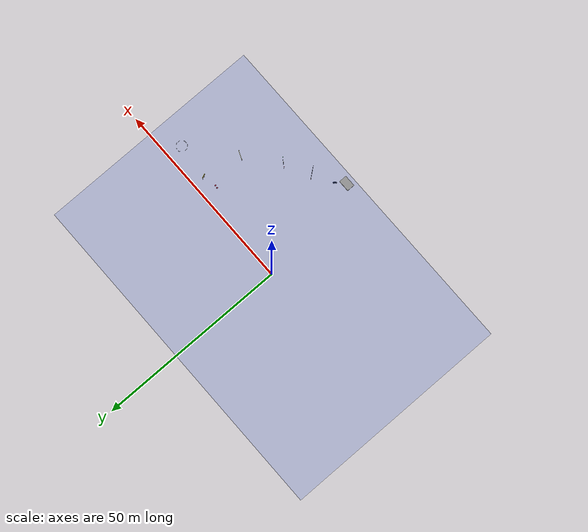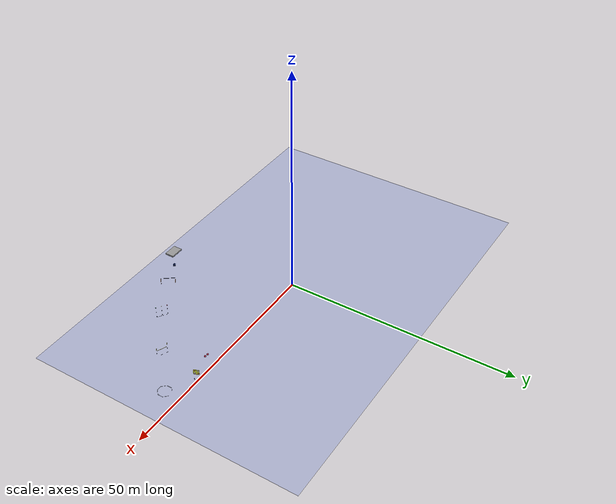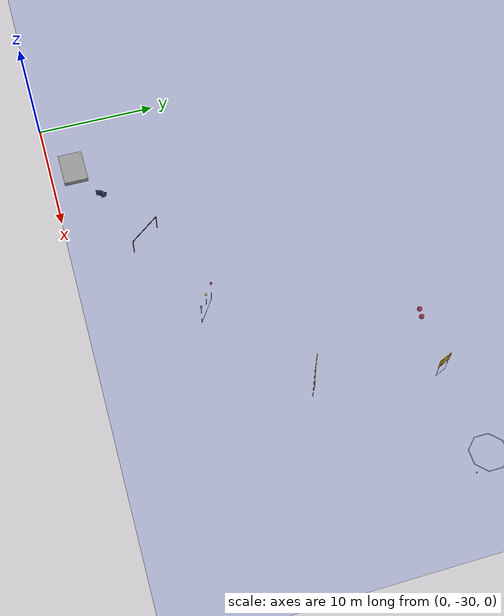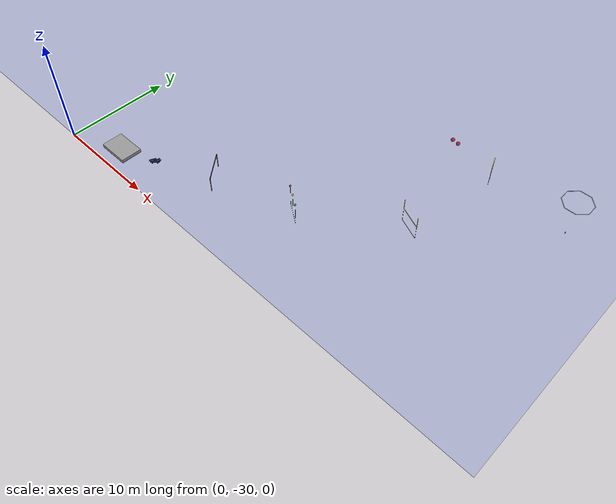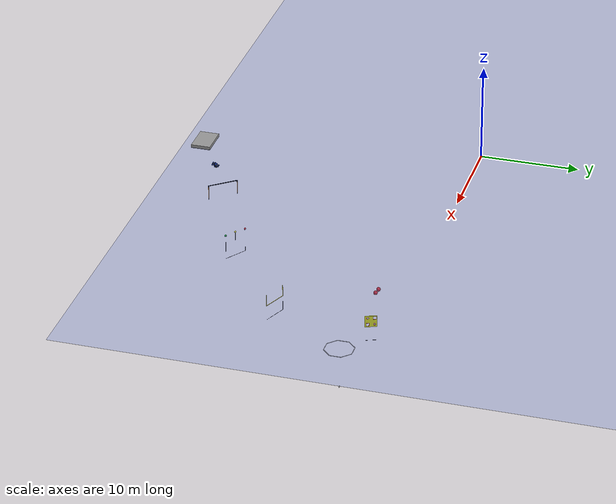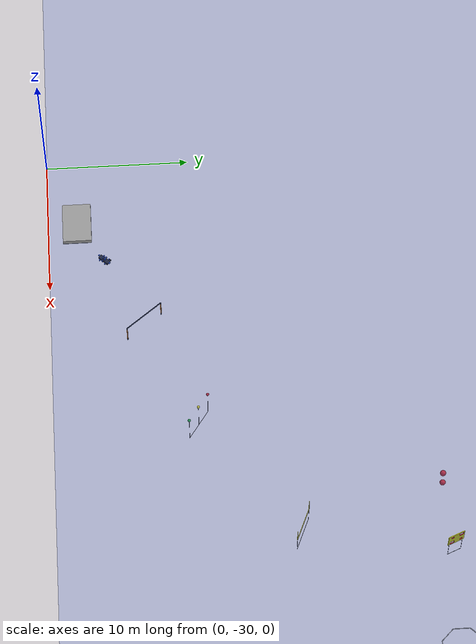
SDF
<sdf version="1.5">
 <world name="default">
  <scene>
   <ambient>0.25 0.3 1 1</ambient>
   <grid>0</grid>
   <background>0.25 0.3 1 1</background>
   <shadows>1</shadows>
  </scene>
  <light type="directional" name="sun0">
   <pose>8 -21 10 0 0.8 -2.8</pose>
   <diffuse>0.8 0.8 0.8 1</diffuse>
   <specular>0.2 0.2 0.2 1</specular>
   <attenuation>
    <range>1000</range>
    <constant>0.9</constant>
    <linear>0.01</linear>
    <quadratic>0.001</quadratic>
   </attenuation>
   <direction>-0.5 0.1 -0.9</direction>
  </light>
  <light type="directional" name="sun1">
   <pose>8 -20 10 0 0.8 0</pose>
   <diffuse>0.8 0.8 0.8 1</diffuse>
   <specular>0.2 0.2 0.2 1</specular>
   <attenuation>
    <range>1000</range>
    <constant>0.9</constant>
    <linear>0.01</linear>
    <quadratic>0.001</quadratic>
   </attenuation>
   <direction>-0.5 0.1 -0.9</direction>
  </light>
  <light type="directional" name="sun2">
   <pose>8 -19 10 0 0 0</pose>
   <diffuse>0.8 0.8 0.8 1</diffuse>
   <specular>0.2 0.2 0.2 1</specular>
   <attenuation>
    <range>1000</range>
    <constant>0.9</constant>
    <linear>0.01</linear>
    <quadratic>0.001</quadratic>
   </attenuation>
   <direction>-0.5 0.1 -0.9</direction>
  </light>
  <light type="directional" name="sun3">
   <pose>8 -19 10 1.75 0 0</pose>
   <diffuse>0.8 0.8 0.8 1</diffuse>
   <specular>0.2 0.2 0.2 1</specular>
   <attenuation>
    <range>1000</range>
    <constant>0.9</constant>
    <linear>0.01</linear>
    <quadratic>0.001</quadratic>
   </attenuation>
   <direction>-0.5 0.1 -0.9</direction>
  </light>
  <light type="directional" name="sun4">
   <pose>8 -19 10 1.75 0 2.9</pose>
   <diffuse>0.8 0.8 0.8 1</diffuse>
   <specular>0.2 0.2 0.2 1</specular>
   <attenuation>
    <range>1000</range>
    <constant>0.9</constant>
    <linear>0.01</linear>
    <quadratic>0.001</quadratic>
   </attenuation>
   <direction>-0.5 0.1 -0.9</direction>
  </light>
  <model name="ceiling_plane">
   <static>true</static>
   <link name="link">
    <visual name="visual">
     <cast_shadows>false</cast_shadows>
     <geometry><box><size>90 60 .001</size></box></geometry>
     <material>
      <script><uri>file://media/materials/scripts/gazebo.material</uri><name>Gazebo/BlueTransparent</name></script>
     </material>
     <transparency>0.8</transparency>
    </visual>
   </link>
  </model>
  <model name="dock_side_a">
   <static>true</static>
   <pose>4.8 -28.0 .13 0 0 0</pose>
   <link name="link">
    <collision name="collision"><geometry><box><size>3 2 0.35</size></box></geometry></collision>
    <visual name="visual">
     <geometry><box><size>3 2 0.35</size></box></geometry>
     <material>
      <script><uri>file://media/materials/scripts/gazebo.material</uri><name>Gazebo/Grey</name></script>
     </material>
    </visual>
   </link>
  </model>
  <model name="pinger_a">
   <static>true</static>
   <pose>37.88 -4.1 -4.9 0 0 0</pose>
   <link name="link">
    <visual name="visual">
     <geometry><cylinder><radius>0.03</radius><length>0.15</length></cylinder></geometry>
     <material>
      <script><uri>file://media/materials/scripts/gazebo.material</uri><name>Gazebo/FlatBlack</name></script>
     </material>
    </visual>
   </link>
  </model>
  <include><name>gate_side_a</name><pose>12.4 -23.6 -0.1 0 0 -0.9</pose><uri>model://gate</uri></include>
  <include><name>buoys_side_a</name><pose>19.0 -20.2 -4.1 0 0 -0.6</pose><uri>model://buoys</uri></include>
  <include>
   <name>channel_side_a</name>
   <pose>27.3 -13.6 -2.25 0 0 -0.4</pose>
   <uri>model://navigation_channel</uri>
  </include>
  <include><name>octagon_side_a</name><pose>37.88 -4.1 -0.75 0 0 0</pose><uri>model://octagon</uri></include>
  <include><name>marker_bin1_side_a</name><pose>25.93 -4.0 -4.54 0 0 0</pose><uri>model://bins</uri></include>
  <include><name>marker_bin2_side_a</name><pose>26.62 -4.1 -4.54 0 0 0</pose><uri>model://bins</uri></include>
  <include>
   <name>torpedo_target_side_a</name>
   <pose>29.2 -3.5 -2.87 0 0 -1.18</pose>
   <uri>model://torpedo_target</uri>
  </include>
  <include><name>robosub</name><pose>7.0 -26.2 -1.2 0 0 0.8</pose><uri>model://cobalt</uri></include>
 </world>
</sdf>

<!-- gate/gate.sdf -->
<sdf version='1.5'>

  <model name='gate'>
    <pose>0 0 0 0 0 0</pose>
    <self_collide> 0 </self_collide>
    <static> 1</static>

    <link name='gate_top'>
      <pose>0 0 0 0 1.5707 0</pose>
      <visual name='gate_top_vis'>
        <geometry>
          <cylinder>
            <radius>0.0381</radius>
            <length>3.05</length>
          </cylinder>
        </geometry>
        <material>
          <script>
            <uri>file://media/materials/scripts/gazebo.material</uri>
            <name>Gazebo/FlatBlack</name>
          </script>
        </material>
      </visual>
      <collision name='gate_top_collide'>
        <pose>0 0 0 0 1.5707 0</pose>
        <geometry>
          <cylinder>
            <radius>0.0381</radius>
            <length>3.05</length>
          </cylinder>
        </geometry>
      </collision>
    </link>

    <link name='gate_right'>
      <pose>1.525 0 -0.762 0 0 0</pose>
      <visual name='gate_right_vis'>
        <geometry>
          <cylinder>
            <radius>0.0381</radius>
            <length>1.21</length>
          </cylinder>
        </geometry>
        <material>
          <script>
            <uri>file://media/materials/scripts/gazebo.material</uri>
            <name>Gazebo/Orange</name>
          </script>
          <diffuse>0.6 0.3088 0.0468 1</diffuse>
        </material>
      </visual>
      <visual name='gate_right_top'>
        <pose>0 0 0.6858 0 0 0</pose>
        <geometry>
          <cylinder>
            <radius>0.0381</radius>
            <length>0.16</length>
          </cylinder>
        </geometry>
        <material>
          <script>
            <uri>file://media/materials/scripts/gazebo.material</uri>
            <name>Gazebo/FlatBlack</name>
          </script>
        </material>
      </visual>
      <visual name='gate_right_bottom'>
        <pose>0 0 -0.6858 0 0 0</pose>
        <geometry>
          <cylinder>
            <radius>0.0381</radius>
            <length>0.16</length>
          </cylinder>
        </geometry>
        <material>
          <script>
              <uri>file://media/materials/scripts/gazebo.material</uri>
              <name>Gazebo/FlatBlack</name>
          </script>
        </material>
      </visual>
      <collision name='gate_right_collide'>
        <pose>1.525 0 -0.762 0 0 0</pose>
        <geometry>
          <cylinder>
            <radius>0.0381</radius>
            <length>1.52</length>
          </cylinder>
        </geometry>
      </collision>
    </link>

    <link name='gate_left'>
      <pose>-1.525 0 -0.762 0 0 0</pose>
      <visual name='gate_left_vis'>
        <geometry>
          <cylinder>
            <radius>0.0381</radius>
            <length>1.21</length>
          </cylinder>
        </geometry>
        <material>
          <script>
            <uri>file://media/materials/scripts/gazebo.material</uri>
            <name>Gazebo/Orange</name>
          </script>
          <diffuse>0.6 0.3088 0.0468 1</diffuse>
        </material>
      </visual>
      <visual name='gate_left_top'>
        <pose>0 0 0.6858 0 0 0</pose>
        <geometry>
          <cylinder>
            <radius>0.0381</radius>
            <length>0.16</length>
          </cylinder>
        </geometry>
        <material>
          <script>
            <uri>file://media/materials/scripts/gazebo.material</uri>
            <name>Gazebo/FlatBlack</name>
          </script>
        </material>
      </visual>
      <visual name='gate_left_bottom'>
        <pose>0 0 -0.6858 0 0 0</pose>
        <geometry>
          <cylinder>
            <radius>0.0381</radius>
            <length>0.16</length>
          </cylinder>
        </geometry>
        <material>
          <script>
              <uri>file://media/materials/scripts/gazebo.material</uri>
              <name>Gazebo/FlatBlack</name>
          </script>
        </material>
      </visual>
      <collision name='gate_left_collide'>
        <pose>-1.525 0 -0.762 0 0 0</pose>
        <geometry>
          <cylinder>
            <radius>0.0381</radius>
            <length>1.52</length>
          </cylinder>
        </geometry>
      </collision>
    </link>

  </model>
</sdf>

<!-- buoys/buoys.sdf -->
<sdf version='1.5'>

  <model name='buoys'>
    <pose>0 0 0 0 0 0</pose>
    <self_collide> 0 </self_collide>
    <static> 1</static>

    <link name='red_buoy'>
      <pose>-1.2 0 2.5 0 0 0</pose>
      <visual name='red_vis'>
        <geometry>
          <sphere><radius>0.1</radius></sphere>
        </geometry>
        <material>
          <script>
            <uri>file://media/materials/scripts/gazebo.material</uri>
            <name>Gazebo/Red</name>
          </script>
          <diffuse>0.6 0 0 1</diffuse>
        </material>
      </visual>
      <collision name='red_collide'>
        <geometry>
          <sphere><radius>0.1</radius></sphere>
        </geometry>
      </collision>
    </link>
    <link name='green_buoy'>
      <pose>1.2 0 2.6 0 0 0</pose>
      <visual name='green_vis'>
        <geometry>
          <sphere><radius>0.1</radius></sphere>
        </geometry>
        <material>
          <script>
            <uri>file://media/materials/scripts/gazebo.material</uri>
            <name>Gazebo/Green</name>
          </script>
          <diffuse>0 0.6 0 1</diffuse>
        </material>
      </visual>
      <collision name='green_collide'>
        <geometry>
          <sphere><radius>0.1</radius></sphere>
        </geometry>
      </collision>
    </link>
    <link name='yellow_buoy'>
        <pose>0 0 2.6 0 0 0</pose>
      <visual name='yellow_vis'>
        <geometry>
          <sphere><radius>0.1</radius></sphere>
        </geometry>
        <material>
          <script>
            <uri>file://media/materials/scripts/gazebo.material</uri>
            <name>Gazebo/Yellow</name>
          </script>
          <diffuse>0.6 0.6 0 1</diffuse>
        </material>
      </visual>
      <collision name='yellow_collide'>
        <geometry>
          <sphere><radius>0.1</radius></sphere>
        </geometry>
      </collision>
    </link>
    <link name='bottom_rod'>
        <pose>0 0 0 0 1.5707 0</pose>
        <visual name='bottom_rod_vis'>
          <geometry>
            <cylinder>
              <radius>0.01</radius>
              <length>2.4</length>
            </cylinder>
          </geometry>
        <material>
          <script>
            <uri>file://media/materials/scripts/gazebo.material</uri>
            <name>Gazebo/FlatBlack</name>
          </script>
          <diffuse>0.3 0.3 0.3 1</diffuse>
        </material>
        </visual>
    </link>
    <link name='red_rod'>
        <pose>-1.2 0 1.2 0 0 0</pose>
        <visual name='red_rod_vis'>
          <geometry>
            <cylinder>
              <radius>0.01</radius>
              <length>2.4</length>
            </cylinder>
          </geometry>
        <material>
          <script>
            <uri>file://media/materials/scripts/gazebo.material</uri>
            <name>Gazebo/FlatBlack</name>
          </script>
          <diffuse>0.3 0.3 0.3 1</diffuse>
        </material>
        </visual>
    </link>
    <link name='green_rod'>
        <pose>0 0 1.26 0 0 0</pose>
        <visual name='green_rod_vis'>
          <geometry>
            <cylinder>
              <radius>0.01</radius>
              <length>2.5</length>
            </cylinder>
          </geometry>
        <material>
          <script>
            <uri>file://media/materials/scripts/gazebo.material</uri>
            <name>Gazebo/FlatBlack</name>
          </script>
          <diffuse>0.3 0.3 0.3 1</diffuse>
        </material>
        </visual>
    </link>
    <link name='yellow_rod'>
        <pose>1.2 0 1.26 0 0 0</pose>
        <visual name='yellow_rod_vis'>
          <geometry>
            <cylinder>
              <radius>0.01</radius>
              <length>2.5</length>
            </cylinder>
          </geometry>
        <material>
          <script>
            <uri>file://media/materials/scripts/gazebo.material</uri>
            <name>Gazebo/FlatBlack</name>
          </script>
          <diffuse>0.3 0.3 0.3 1</diffuse>
        </material>
        </visual>
    </link>

  </model>
</sdf>

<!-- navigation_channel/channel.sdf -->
<sdf version='1.5'>

  <model name='channel'>
    <pose>0 0 0 0 0 0</pose>
    <self_collide> 0 </self_collide>
    <static> 1</static>

    <link name='bottom'>
      <pose>0 0 -1.2 0 1.5707 0</pose>
      <visual name='bottom_vis'>
        <geometry>
          <cylinder>
            <radius>0.0254</radius>
            <length>2.4</length>
          </cylinder>
        </geometry>
        <material>
          <script>
            <uri>file://media/materials/scripts/gazebo.material</uri>
            <name>Gazebo/Yellow</name>
          </script>
          <diffuse>0.6 0.6 0 1</diffuse>
        </material>
      </visual>
      <collision name='bottom_collide'>
        <pose>0 0 -1.2 0 1.5707 0</pose>
        <geometry>
          <cylinder>
            <radius>0.0254</radius>
            <length>2.4</length>
          </cylinder>
        </geometry>
      </collision>
    </link>

    <link name='left'>
      <pose>-1.2 0 -0.6 0 0 0</pose>
      <visual name='left_vis'>
        <geometry>
          <cylinder>
            <radius>0.0254</radius>
            <length>1.2</length>
          </cylinder>
        </geometry>
        <material>
          <script>
            <uri>file://media/materials/scripts/gazebo.material</uri>
            <name>Gazebo/Yellow</name>
          </script>
          <diffuse>0.6 0.6 0 1</diffuse>
        </material>
      </visual>
      <collision name='left_collide'>
        <pose>-1.2 0 0.6 0 0 0</pose>
        <geometry>
          <cylinder>
            <radius>0.0254</radius>
            <length>1.2</length>
          </cylinder>
        </geometry>
      </collision>
    </link>

    <link name='right'>
      <pose>1.2 0 -0.6 0 0 0</pose>
      <visual name='right_vis'>
        <geometry>
          <cylinder>
            <radius>0.0254</radius>
            <length>1.2</length>
          </cylinder>
        </geometry>
        <material>
          <script>
            <uri>file://media/materials/scripts/gazebo.material</uri>
            <name>Gazebo/Yellow</name>
          </script>
          <diffuse>0.6 0.6 0 1</diffuse>
        </material>
      </visual>
      <collision name='right_collide'>
        <pose>1.2 0 0.6 0 0 0</pose>
        <geometry>
          <cylinder>
            <radius>0.0254</radius>
            <length>1.2</length>
          </cylinder>
        </geometry>
      </collision>
    </link>

    <link name='left_tether'>
      <pose>-1.2 0 -2.0 0 0 0</pose>
      <visual name='left_tether_vis'>
        <geometry>
          <cylinder>
            <radius>0.01</radius>
            <length>1.5</length>
          </cylinder>
        </geometry>
        <material>
          <script>
            <uri>file://media/materials/scripts/gazebo.material</uri>
            <name>Gazebo/FlatBlack</name>
          </script>
          <diffuse>0.3 0.3 0.3 1</diffuse>
        </material>
      </visual>
      <collision name='left_tether_collide'>
        <pose>-1.2 0 -2.0 0 0 0</pose>
        <geometry>
          <cylinder>
            <radius>0.01</radius>
            <length>1.5</length>
          </cylinder>
        </geometry>
      </collision>
    </link>

    <link name='right_tether'>
      <pose>1.2 0 -2.0 0 0 0</pose>
      <visual name='right_tether_vis'>
        <geometry>
          <cylinder>
            <radius>0.01</radius>
            <length>1.5</length>
          </cylinder>
        </geometry>
        <material>
          <script>
            <uri>file://media/materials/scripts/gazebo.material</uri>
            <name>Gazebo/FlatBlack</name>
          </script>
          <diffuse>0.3 0.3 0.3 1</diffuse>
        </material>
      </visual>
      <collision name='right_tether_collide'>
        <pose>1.2 0 -2.0 0 0 0</pose>
        <geometry>
          <cylinder>
            <radius>0.01</radius>
            <length>1.5</length>
          </cylinder>
        </geometry>
      </collision>
    </link>

    <link name='floor'>
      <pose>0 0 -2.75 0 1.5707 0</pose>
      <visual name='floor_vis'>
        <geometry>
          <cylinder>
            <radius>0.01</radius>
            <length>2.4</length>
          </cylinder>
        </geometry>
        <material>
          <script>
            <uri>file://media/materials/scripts/gazebo.material</uri>
            <name>Gazebo/FlatBlack</name>
          </script>
          <diffuse>0.3 0.3 0.3 1</diffuse>
        </material>
      </visual>
      <collision name='floor_collide'>
        <pose>0 0 -2.75 0 1.5707 0</pose>
        <geometry>
          <cylinder>
            <radius>0.01</radius>
            <length>2.4</length>
          </cylinder>
        </geometry>
      </collision>
    </link>
  </model>
</sdf>

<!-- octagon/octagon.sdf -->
<sdf version='1.5'>

  <model name='octagon'>
    <pose>0 0 0 0 0 0</pose>
    <self_collide> 0 </self_collide>
    <static> 1</static>

    <link name='rod1'>
        <pose>0 1.35 0 0 1.5707 0</pose>
        <visual name='rod1_vis'>
          <geometry>
            <cylinder>
              <radius>0.0254</radius>
              <length>1.118</length>
            </cylinder>
          </geometry>
        <material>
          <script>
            <uri>file://media/materials/scripts/gazebo.material</uri>
            <name>Gazebo/White</name>
          </script>
          <diffuse>0.3 0.3 0.3 1</diffuse>
        </material>
        </visual>
        <collision name='rod1_collide'>
          <pose>1.35 0 0 0 1.5707 0</pose>
          <geometry>
            <cylinder>
              <radius>0.0254</radius>
              <length>1.118</length>
            </cylinder>
          </geometry>
        </collision>
    </link>

    <link name='rod2'>
        <pose>0 -1.35 0 0 1.5707 0</pose>
        <visual name='rod2_vis'>
          <geometry>
            <cylinder>
              <radius>0.0254</radius>
              <length>1.118</length>
            </cylinder>
          </geometry>
        <material>
          <script>
            <uri>file://media/materials/scripts/gazebo.material</uri>
            <name>Gazebo/White</name>
          </script>
          <diffuse>0.3 0.3 0.3 1</diffuse>
        </material>
        </visual>
        <collision name='rod2_collide'>
          <pose>-1.35 0 0 0 1.5707 0</pose>
          <geometry>
            <cylinder>
              <radius>0.0254</radius>
              <length>1.118</length>
            </cylinder>
          </geometry>
        </collision>
    </link>

    <link name='rod3'>
        <pose>1.35 0 0 0 1.5707 1.5707</pose>
        <visual name='rod3_vis'>
          <geometry>
            <cylinder>
              <radius>0.0254</radius>
              <length>1.118</length>
            </cylinder>
          </geometry>
        <material>
          <script>
            <uri>file://media/materials/scripts/gazebo.material</uri>
            <name>Gazebo/White</name>
          </script>
          <diffuse>0.3 0.3 0.3 1</diffuse>
        </material>
        </visual>
        <collision name='rod3_collide'>
          <pose>0 1.35 0 0 1.5707 1.5707</pose>
          <geometry>
            <cylinder>
              <radius>0.0254</radius>
              <length>1.118</length>
            </cylinder>
          </geometry>
        </collision>
    </link>

    <link name='rod4'>
        <pose>-1.35 0 0 0 1.5707 1.5707</pose>
        <visual name='rod4_vis'>
          <geometry>
            <cylinder>
              <radius>0.0254</radius>
              <length>1.118</length>
            </cylinder>
          </geometry>
        <material>
          <script>
            <uri>file://media/materials/scripts/gazebo.material</uri>
            <name>Gazebo/White</name>
          </script>
          <diffuse>0.3 0.3 0.3 1</diffuse>
        </material>
        </visual>
        <collision name='rod4_collide'>
          <pose>0 -1.35 0 0 1.5707 1.5707</pose>
          <geometry>
            <cylinder>
              <radius>0.0254</radius>
              <length>1.118</length>
            </cylinder>
          </geometry>
        </collision>
    </link>

    <link name='rod5'>
        <pose>0.95 0.95 0 0 1.5707 2.356</pose>
        <visual name='rod5_vis'>
          <geometry>
            <cylinder>
              <radius>0.0254</radius>
              <length>1.118</length>
            </cylinder>
          </geometry>
        <material>
          <script>
            <uri>file://media/materials/scripts/gazebo.material</uri>
            <name>Gazebo/White</name>
          </script>
          <diffuse>0.3 0.3 0.3 1</diffuse>
        </material>
        </visual>
        <collision name='rod5_collide'>
          <pose>0.95 0.95 0 0 1.5707 2.356</pose>
          <geometry>
            <cylinder>
              <radius>0.0254</radius>
              <length>1.118</length>
            </cylinder>
          </geometry>
        </collision>
    </link>

    <link name='rod6'>
        <pose>-0.95 0.95 0 0 1.5707 -2.356</pose>
        <visual name='rod6_vis'>
          <geometry>
            <cylinder>
              <radius>0.0254</radius>
              <length>1.118</length>
            </cylinder>
          </geometry>
        <material>
          <script>
            <uri>file://media/materials/scripts/gazebo.material</uri>
            <name>Gazebo/White</name>
          </script>
          <diffuse>0.3 0.3 0.3 1</diffuse>
        </material>
        </visual>
        <collision name='rod6_collide'>
          <pose>-0.95 0.95 0 0 1.5707 -2.356</pose>
          <geometry>
            <cylinder>
              <radius>0.0254</radius>
              <length>1.118</length>
            </cylinder>
          </geometry>
        </collision>
    </link>

    <link name='rod7'>
        <pose>-0.95 -0.95 0 0 1.5707 2.356</pose>
        <visual name='rod7_vis'>
          <geometry>
            <cylinder>
              <radius>0.0254</radius>
              <length>1.118</length>
            </cylinder>
          </geometry>
        <material>
          <script>
            <uri>file://media/materials/scripts/gazebo.material</uri>
            <name>Gazebo/White</name>
          </script>
          <diffuse>0.3 0.3 0.3 1</diffuse>
        </material>
        </visual>
        <collision name='rod7_collide'>
          <pose>-0.95 -0.95 0 0 1.5707 2.356</pose>
          <geometry>
            <cylinder>
              <radius>0.0254</radius>
              <length>1.118</length>
            </cylinder>
          </geometry>
        </collision>
    </link>

    <link name='rod8'>
        <pose>0.95 -0.95 0 0 1.5707 -2.356</pose>
        <visual name='rod8_vis'>
          <geometry>
            <cylinder>
              <radius>0.0254</radius>
              <length>1.118</length>
            </cylinder>
          </geometry>
        <material>
          <script>
            <uri>file://media/materials/scripts/gazebo.material</uri>
            <name>Gazebo/White</name>
          </script>
          <diffuse>0.3 0.3 0.3 1</diffuse>
        </material>
        </visual>
        <collision name='rod8_collide'>
          <pose>0.95 -0.95 0 0 1.5707 -2.356</pose>
          <geometry>
            <cylinder>
              <radius>0.0254</radius>
              <length>1.118</length>
            </cylinder>
          </geometry>
        </collision>
    </link>
  </model>
</sdf>

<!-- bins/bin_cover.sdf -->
<sdf version='1.5'>

  <model name='bin_cover'>
    <pose>0 0 0 0 0 0</pose>
    <self_collide> 0 </self_collide>
    <static> 1</static>

    <link name='red_buoy'>
      <pose>-1.2 0 2.5 0 0 0</pose>
      <visual name='red_vis'>
        <geometry>
          <sphere><radius>0.2</radius></sphere>
        </geometry>
        <material>
          <script>
            <uri>file://media/materials/scripts/gazebo.material</uri>
            <name>Gazebo/Red</name>
          </script>
          <diffuse>0.6 0 0 1</diffuse>
        </material>
      </visual>
      <collision name='red_collide'>
        <pose>-1.2 0 2.5 0 0 0</pose>
        <geometry>
          <sphere><radius>0.11</radius></sphere>
        </geometry>
      </collision>
    </link>

  </model>
</sdf>

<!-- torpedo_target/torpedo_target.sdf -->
<sdf version='1.5'>

  <model name='torpedo_target'>
    <pose>0 0 0 0 0 0</pose>
    <self_collide> 0 </self_collide>
    <static> 1</static>

    <link name='board'>
      <pose>0 0 0 0 0 0</pose>
      <visual name='main'>
        <geometry>
            <mesh><uri>file://torpedo_target/TorpedoTarget.dae</uri></mesh>
        </geometry>
      </visual>
      <collision name='main'>
        <pose>0 0 0 1.5707 0 0</pose>
        <geometry>
          <box><size>1.2 1.2 0.05</size></box>
        </geometry>
      </collision>
    </link>

    <link name='legs'>
      <visual name='leg1'>
        <pose>-0.5 0 -1.35 0 0 0 </pose>
        <geometry>
          <cylinder>
            <radius>0.01</radius>
            <length>1.5</length>
          </cylinder>
        </geometry>
        <material>
          <script>
            <uri>file://media/materials/scripts/gazebo.material</uri>
            <name>Gazebo/FlatBlack</name>
          </script>
          <diffuse>0.3 0.3 0.3 1</diffuse>
        </material>
      </visual>
      <visual name='leg2'>
        <pose>0.5 0 -1.35 0 0 0 </pose>
        <geometry>
          <cylinder>
            <radius>0.01</radius>
            <length>1.5</length>
          </cylinder>
        </geometry>
        <material>
          <script>
            <uri>file://media/materials/scripts/gazebo.material</uri>
            <name>Gazebo/FlatBlack</name>
          </script>
          <diffuse>0.3 0.3 0.3 1</diffuse>
        </material>
      </visual>
      <visual name='floor'>
        <pose>0 0 -2.1 0 1.5707 0</pose>
        <geometry>
          <cylinder>
            <radius>0.01</radius>
            <length>1</length>
          </cylinder>
        </geometry>
        <material>
          <script>
            <uri>file://media/materials/scripts/gazebo.material</uri>
            <name>Gazebo/FlatBlack</name>
          </script>
          <diffuse>0.3 0.3 0.3 1</diffuse>
        </material>
      </visual>
    </link>

  </model>
</sdf>

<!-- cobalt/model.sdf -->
<sdf version='1.5'>

  <model name='robosub_cobalt'>
    <pose>0 0 0.0 0 0 0</pose>
    <self_collide> 0 </self_collide>

    <joint name="hull_frame" type="fixed">
        <parent>frame</parent>
        <child>hull</child>
    </joint>

    <joint name='dive_front_left_frame' type="fixed">
        <parent>frame</parent>
        <child>dive_front_left</child>
    </joint>

    <joint name='dive_front_right_frame' type="fixed">
        <parent>frame</parent>
        <child>dive_front_right</child>
    </joint>

    <joint name='dive_back_left_frame' type="fixed">
        <parent>frame</parent>
        <child>dive_back_left</child>
    </joint>

    <joint name='dive_back_right_frame' type="fixed">
        <parent>frame</parent>
        <child>dive_back_right</child>
    </joint>

    <joint name='strafe_front_frame' type="fixed">
        <parent>frame</parent>
        <child>strafe_front</child>
    </joint>

    <joint name='strafe_back_frame' type="fixed">
        <parent>frame</parent>
        <child>strafe_back</child>
    </joint>

    <joint name='forward_left_frame' type="fixed">
        <parent>frame</parent>
        <child>forward_left</child>
    </joint>

    <joint name='forward_right_frame' type="fixed">
        <parent>frame</parent>
        <child>forward_right</child>
    </joint>

    <joint name='left_camera_frame' type="fixed">
        <parent>frame</parent>
        <child>left_camera</child>
    </joint>

    <joint name='right_camera_frame' type="fixed">
        <parent>frame</parent>
        <child>right_camera</child>
    </joint>

    <joint name='bottom_camera_frame' type="fixed">
        <parent>frame</parent>
        <child>bottom_camera</child>
    </joint>

    <joint name='hydrophone_h0_frame' type="fixed">
        <parent>frame</parent>
        <child>hydrophone_h0</child>
    </joint>

    <joint name='hydrophone_hx_frame' type="fixed">
        <parent>frame</parent>
        <child>hydrophone_hx</child>
    </joint>

    <joint name='hydrophone_hy_frame' type="fixed">
        <parent>frame</parent>
        <child>hydrophone_hy</child>
    </joint>

    <joint name='hydrophone_hz_frame' type="fixed">
        <parent>frame</parent>
        <child>hydrophone_hz</child>
    </joint>

    <link name='hull'>
      <pose>0 0 .082 1.57079632679 0 1.57079632679 </pose>
      <inertial>
        <mass>9</mass>
      </inertial>

      <visual name='bulkhead_visual'>
        <geometry>
              <cylinder>
                <radius>0.1</radius>
                <length>.13</length>
              </cylinder>
        </geometry>
        <material>
            <script>
              <uri>file://media/materials/scripts/gazebo.material</uri>
              <name>Gazebo/Black</name>
            </script>
          </material>
      </visual>

      <visual name='front_ring_visual'>
      <pose>0 0 .075 0 0 0</pose>
        <geometry>
              <cylinder>
                <radius>0.102</radius>
                <length>.05</length>
              </cylinder>
        </geometry>
        <material>
            <script>
              <uri>file://media/materials/scripts/gazebo.material</uri>
              <name>Gazebo/Blue</name>
            </script>
          </material>
      </visual>
      <visual name='rear_ring_visual'>
      <pose>0 0 -.075 0 0 0</pose>
        <geometry>
              <cylinder>
                <radius>0.102</radius>
                <length>.05</length>
              </cylinder>
        </geometry>
        <material>
            <script>
              <uri>file://media/materials/scripts/gazebo.material</uri>
              <name>Gazebo/Blue</name>
            </script>
          </material>
      </visual>
      <visual name='front_tube_visual'>
      <pose>0 0 .235 0 0 0</pose>
        <geometry>
              <cylinder>
                <radius>0.1</radius>
                <length>.32</length>
              </cylinder>
        </geometry>
        <material>
            <script>
              <uri>file://media/materials/scripts/gazebo.material</uri>
              <name>Gazebo/GreyTransparent</name>
            </script>
            <diffuse>0.6 0.6 0.6 0.6</diffuse>
          </material>
      </visual>

      <visual name='rear_tube_visual'>
      <pose>0 0 -.235 0 0 0</pose>
        <geometry>
              <cylinder>
                <radius>0.1</radius>
                <length>.32</length>
              </cylinder>
        </geometry>
        <material>
            <script>
              <uri>file://media/materials/scripts/gazebo.material</uri>
              <name>Gazebo/GreyTransparent</name>
            </script>
            <diffuse>0.6 0.6 0.6 0.6</diffuse>
          </material>
      </visual>
      <collision name='hull_collision'>
        <geometry>
              <cylinder>
                <radius>0.1</radius>
                <length>.77</length>
              </cylinder>
            </geometry>
      </collision>
      <velocity_decay>
          <linear>0.002</linear>
          <angular>0.002</angular>
      </velocity_decay>
    </link>

    <link name='hydrophone_h0'>
      <pose> 0 0 0 0 0 0 </pose>
      <inertial>
        <mass> 0.01 </mass>
      </inertial>
    </link>

    <link name='hydrophone_hx'>
      <pose> 3 0 0 0 0 0 </pose>
      <inertial>
        <mass> 0.01 </mass>
      </inertial>
    </link>

    <link name='hydrophone_hy'>
      <pose> 0 3 0 0 0 0 </pose>
      <inertial>
        <mass> 0.01 </mass>
      </inertial>
    </link>

    <link name='hydrophone_hz'>
      <pose> 0 0 3 0 0 0 </pose>
      <inertial>
        <mass> 0.01 </mass>
      </inertial>
    </link>

    <link name='frame'>
      <pose>0 0 -0.088 0 0 0</pose>
      <inertial>
        <mass>16.5</mass>
      </inertial>

      <visual name='frame_visual'>
        <geometry>
              <box>
                <size>.85 .3 .13</size>
              </box>
            </geometry>
          <material>
            <script>
              <uri>file://media/materials/scripts/gazebo.material</uri>
              <name>Gazebo/FlatBlack</name>
            </script>
          </material>
      </visual>

      <collision name='frame_collision'>
        <geometry>
              <box>
                <size>.85 .3 .13</size>
              </box>
            </geometry>
      </collision>
      <velocity_decay>
          <linear>0.002</linear>
          <angular>0.002</angular>
      </velocity_decay>
    </link>

    <link name='dive_front_left'>
      <pose>0.235 0.23 -0.1 0 3.14159 0</pose>
      <inertial>
        <mass>0.344</mass>
      </inertial>
      <visual name='dive_front_left_visual'>
        <geometry>
          <cylinder>
            <radius>0.0485</radius>
            <length>0.101</length>
          </cylinder>
        </geometry>
      <material>
        <script>
          <uri>file://media/materials/scripts/gazebo.material</uri>
          <name>Gazebo/Blue</name>
        </script>
      </material>
      </visual>
      <collision name='dive_front_left_collision'>
        <geometry>
          <cylinder>
            <radius>0.0485</radius>
            <length>0.101</length>
          </cylinder>
        </geometry>
      </collision>
    </link>

    <link name='dive_front_right'>
      <pose>0.235 -0.23 -0.1 0 3.14159 0</pose>
      <inertial>
        <mass>0.344</mass>
      </inertial>
      <visual name='dive_front_right_visual'>
        <geometry>
          <cylinder>
            <radius>0.0485</radius>
            <length>0.101</length>
          </cylinder>
        </geometry>
      <material>
        <script>
          <uri>file://media/materials/scripts/gazebo.material</uri>
          <name>Gazebo/Blue</name>
        </script>
      </material>
      </visual>
      <collision name='dive_front_right_collision'>
        <geometry>
          <cylinder>
            <radius>0.0485</radius>
            <length>0.101</length>
          </cylinder>
        </geometry>
      </collision>
    </link>

    <link name='dive_back_left'>
      <pose>-0.235 0.23 -0.1 0 3.14159 0</pose>
      <inertial>
        <mass>0.344</mass>
      </inertial>
      <visual name='dive_back_left_visual'>
        <geometry>
          <cylinder>
            <radius>0.0485</radius>
            <length>0.101</length>
          </cylinder>
        </geometry>
      <material>
        <script>
          <uri>file://media/materials/scripts/gazebo.material</uri>
          <name>Gazebo/Blue</name>
        </script>
      </material>
      </visual>
      <collision name='dive_back_left_collision'>
        <geometry>
          <cylinder>
            <radius>0.0485</radius>
            <length>0.101</length>
          </cylinder>
        </geometry>
      </collision>
    </link>

    <link name='dive_back_right'>
      <pose>-0.235 -0.23 -0.1 0 3.14159 0</pose>
      <inertial>
        <mass>0.344</mass>
      </inertial>
      <visual name='dive_back_right_visual'>
        <geometry>
          <cylinder>
            <radius>0.0485</radius>
            <length>0.101</length>
          </cylinder>
        </geometry>
      <material>
        <script>
          <uri>file://media/materials/scripts/gazebo.material</uri>
          <name>Gazebo/Blue</name>
        </script>
      </material>
      </visual>
      <collision name='dive_back_right_collision'>
        <geometry>
          <cylinder>
            <radius>0.0485</radius>
            <length>0.101</length>
          </cylinder>
        </geometry>
      </collision>
    </link>

    <link name='strafe_front'>
      <pose>0.49 0 -0.01 -1.57079632679 0 0</pose>
      <inertial>
        <mass>0.344</mass>
      </inertial>
      <visual name='strafe_front_visual'>
        <geometry>
          <cylinder>
            <radius>0.0485</radius>
            <length>0.101</length>
          </cylinder>
        </geometry>
      <material>
        <script>
          <uri>file://media/materials/scripts/gazebo.material</uri>
          <name>Gazebo/Blue</name>
        </script>
      </material>
      </visual>
      <collision name='strafe_front_collision'>
        <geometry>
          <cylinder>
            <radius>0.0485</radius>
            <length>0.101</length>
          </cylinder>
        </geometry>
      </collision>
    </link>

    <link name='strafe_back'>
      <pose>-0.49 0 -0.01 -1.57079632679 0 0</pose>
      <inertial>
        <mass>0.344</mass>
      </inertial>
      <visual name='strafe_back_visual'>
        <geometry>
          <cylinder>
            <radius>0.0485</radius>
            <length>0.101</length>
          </cylinder>
        </geometry>
      <material>
        <script>
          <uri>file://media/materials/scripts/gazebo.material</uri>
          <name>Gazebo/Blue</name>
        </script>
      </material>
      </visual>
      <collision name='strafe_back_collision'>
        <geometry>
          <cylinder>
            <radius>0.0485</radius>
            <length>0.101</length>
          </cylinder>
        </geometry>
      </collision>
    </link>

    <link name='forward_left'>
      <pose>0 0.2075 -0.01 0 -1.57079632679 0</pose>
      <inertial>
        <mass>0.344</mass>
      </inertial>
      <visual name='forward_left_visual'>
        <geometry>
          <cylinder>
            <radius>0.0485</radius>
            <length>0.101</length>
          </cylinder>
        </geometry>
      <material>
        <script>
          <uri>file://media/materials/scripts/gazebo.material</uri>
          <name>Gazebo/Blue</name>
        </script>
      </material>
      </visual>
      <collision name='forward_left_collision'>
        <geometry>
          <cylinder>
            <radius>0.0485</radius>
            <length>0.101</length>
          </cylinder>
        </geometry>
      </collision>
    </link>

    <link name='forward_right'>
      <pose>0 -0.2075 -0.01 0 -1.57079632679 0</pose>
      <inertial>
        <mass>0.344</mass>
      </inertial>
      <visual name='forward_right_visual'>
        <geometry>
          <cylinder>
            <radius>0.0485</radius>
            <length>0.101</length>
          </cylinder>
        </geometry>
      <material>
        <script>
          <uri>file://media/materials/scripts/gazebo.material</uri>
          <name>Gazebo/Blue</name>
        </script>
      </material>
      </visual>
      <collision name='forward_right_collision'>
        <geometry>
          <cylinder>
            <radius>0.0485</radius>
            <length>0.101</length>
          </cylinder>
        </geometry>
      </collision>
    </link>

    <link name='left_camera'>
      <pose>0.37 0.20 0.04 0 1.57079632679 0</pose>
      <inertial>
        <mass>0.73</mass>
      </inertial>
      <visual name='left_camera_visual'>
        <geometry>
          <cylinder>
            <radius>0.0405</radius>
            <length>0.15</length>
          </cylinder>
        </geometry>
      <material>
        <script>
          <uri>file://media/materials/scripts/gazebo.material</uri>
          <name>Gazebo/Black</name>
        </script>
      </material>
      </visual>
      <collision name='left_camera_collision'>
        <geometry>
          <cylinder>
            <radius>0.0405</radius>
            <length>0.15</length>
          </cylinder>
        </geometry>
      </collision>
      <sensor name="left" type="wideanglecamera">
          <pose>0 0 0.14 0 -1.570796 0</pose>
          <camera>
              <horizontal_fov>3.1415</horizontal_fov>
              <image>
                  <width>640</width>
                  <height>640</height>
              </image>
              <clip>
                  <near>0.001</near>
                  <far>100</far>
              </clip>
              <lens>
                  <type>custom</type>
                  <custom_function>
                      <c1>691.5</c1>
                      <c2>515.5</c2>
                      <f>341.43251966606937</f>
                      <fun>tan</fun>
                  </custom_function>
                  <scale_to_hfov>true</scale_to_hfov>
                  <cutoff_angle>1.57075</cutoff_angle>
                  <env_texture_size>512</env_texture_size>
              </lens>
              <distortion>
                <k1>-.16492342967649815</k1>
                <k2>0.016187172468110342</k2>
                <k3>-0.00038951913220274415</k3>
                <p1>0</p1>
                <p2>0</p2>
                <center>0 0</center>
              </distortion>
          </camera>
          <plugin name="left_camera_controller" filename="libgazebo_ros_camera.so">
              <cameraName>left</cameraName>
              <imageTopicName>/camera/left</imageTopicName>
          </plugin>
          <always_on>1</always_on>
          <update_rate>5</update_rate>
      </sensor>
    </link>

    <link name='right_camera'>
      <pose>0.37 -0.20 0.04 0 1.57079632679 0</pose>
      <inertial>
        <mass>0.73</mass>
      </inertial>
      <visual name='right_camera_visual'>
        <geometry>
          <cylinder>
            <radius>0.0405</radius>
            <length>0.15</length>
          </cylinder>
        </geometry>
      <material>
        <script>
          <uri>file://media/materials/scripts/gazebo.material</uri>
          <name>Gazebo/Black</name>
        </script>
      </material>
      </visual>
      <collision name='right_camera_collision'>
        <geometry>
          <cylinder>
            <radius>0.0405</radius>
            <length>0.15</length>
          </cylinder>
        </geometry>
      </collision>
      <sensor name="right" type="wideanglecamera">
          <pose>0 0 0.14 0 -1.570796 0</pose>
          <camera>
              <horizontal_fov>3.1415</horizontal_fov>
              <image>
                  <width>640</width>
                  <height>640</height>
              </image>
              <clip>
                  <near>0.1</near>
                  <far>100</far>
              </clip>
              <lens>
                  <type>custom</type>
                  <custom_function>
                      <c1>691.5</c1>
                      <c2>515.5</c2>
                      <f>341.43251966606937</f>
                      <fun>tan</fun>
                  </custom_function>
                  <scale_to_hfov>true</scale_to_hfov>
                  <cutoff_angle>1.57075</cutoff_angle>
                  <env_texture_size>512</env_texture_size>
              </lens>
              <distortion>
                <k1>-.16492342967649815</k1>
                <k2>0.016187172468110342</k2>
                <k3>-0.00038951913220274415</k3>
                <p1>0</p1>
                <p2>0</p2>
                <center>0 0</center>
              </distortion>
          </camera>
          <plugin name="right_camera_controller" filename="libgazebo_ros_camera.so">
              <cameraName>right</cameraName>
              <imageTopicName>/camera/right</imageTopicName>
          </plugin>
          <always_on>1</always_on>
          <update_rate>5</update_rate>
      </sensor>
    </link>

    <link name='bottom_camera'>
      <pose>0 0 -0.1 0 3.14159265358 0</pose>
      <inertial>
        <mass>0.73</mass>
      </inertial>
      <visual name='bottom_camera_visual'>
        <geometry>
          <cylinder>
            <radius>0.0405</radius>
            <length>0.15</length>
          </cylinder>
        </geometry>
      <material>
        <script>
          <uri>file://media/materials/scripts/gazebo.material</uri>
          <name>Gazebo/Black</name>
        </script>
      </material>
      </visual>
      <collision name='bottom_camera_collision'>
        <geometry>
          <cylinder>
            <radius>0.0405</radius>
            <length>0.15</length>
          </cylinder>
        </geometry>
      </collision>
      <sensor name="bottom" type="wideanglecamera">
          <pose>0 0 0.14 0 -1.570796 0</pose>
          <camera>
              <horizontal_fov>3.1415</horizontal_fov>
              <image>
                  <width>640</width>
                  <height>640</height>
              </image>
              <clip>
                  <near>0.1</near>
                  <far>100</far>
              </clip>
              <lens>
                  <type>custom</type>
                  <custom_function>
                      <c1>691.5</c1>
                      <c2>515.5</c2>
                      <f>341.43251966606937</f>
                      <fun>tan</fun>
                  </custom_function>
                  <scale_to_hfov>true</scale_to_hfov>
                  <cutoff_angle>1.57075</cutoff_angle>
                  <env_texture_size>512</env_texture_size>
              </lens>
              <distortion>
                <k1>-.16492342967649815</k1>
                <k2>0.016187172468110342</k2>
                <k3>-0.00038951913220274415</k3>
                <p1>0</p1>
                <p2>0</p2>
                <center>0 0</center>
              </distortion>
          </camera>
          <plugin name="bottom_camera_controller" filename="libgazebo_ros_camera.so">
              <cameraName>bottom</cameraName>
              <imageTopicName>/camera/bottom</imageTopicName>
          </plugin>
          <always_on>1</always_on>
          <update_rate>5</update_rate>
      </sensor>
    </link>

    <allow_auto_disable>0</allow_auto_disable>

    <plugin name="thruster" filename="libthruster.so"/>

    <plugin name="buoyancy_improved" filename="libbuoyancy_improved.so">
      <fluid_density>1000</fluid_density>
      <link name="frame">
        <volume>0.0026</volume>
      </link>

      <!-- thrusters -->
      <link name="dive_back_right">
        <volume>0.000334</volume>
      </link>
      <link name="dive_back_left">
        <volume>0.000334</volume>
      </link>
      <link name="dive_front_right">
        <volume>0.000334</volume>
      </link>
      <link name="dive_front_left">
        <volume>0.000334</volume>
      </link>
      <link name="strafe_front">
        <volume>0.000334</volume>
      </link>
      <link name="strafe_back">
        <volume>0.000334</volume>
      </link>
      <link name="forward_right">
        <volume>0.000334</volume>
      </link>
      <link name="forward_left">
        <volume>0.000334</volume>
      </link>
    </plugin>

    <plugin name="imu" filename="libgazebo_ros_imu.so">
      <alwaysOn>true</alwaysOn>
      <bodyName>frame</bodyName>
      <topicName>gazebo/rs_imu</topicName>
      <serviceName>gazebo/rs_imu_service</serviceName>
      <gaussianNoise>0.0</gaussianNoise>
      <updateRate>20.0</updateRate>
    </plugin>
  </model>
</sdf>
